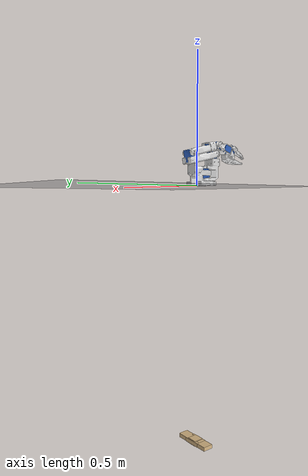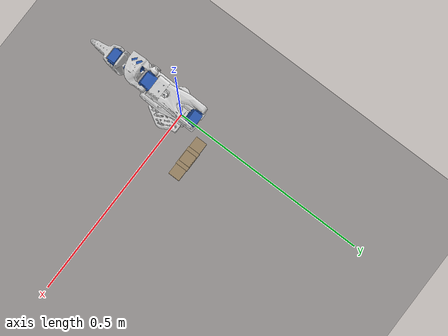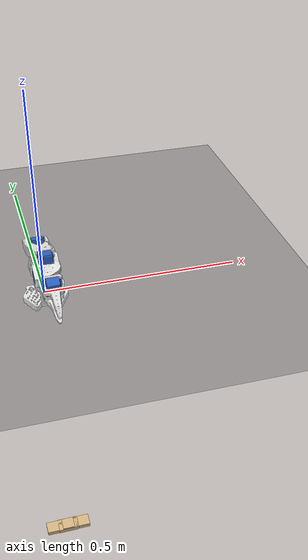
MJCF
<mujoco model="so100_scene">
  <compiler angle="radian" meshdir="assets/"/>

  <visual>
    <global offwidth="1920" offheight="1080"/>
    <headlight ambient="0.6 0.6 0.6" diffuse="0.8 0.8 0.8" specular="0.3 0.3 0.3"/>
    <rgba haze="0.18 0.18 0.2 1"/>
  </visual>

  <asset>
    <texture type="skybox" colorspace="auto" builtin="gradient" rgb1="0.25 0.26 0.28" rgb2="0.12 0.12 0.14" width="512" height="3072"/>
    <texture type="2d" colorspace="auto" name="grid" builtin="checker" rgb1="0.18 0.18 0.2" rgb2="0.22 0.22 0.24" width="512" height="512"/>
    <material name="grid_mat" texture="grid" texrepeat="10 10" reflectance="0.05"/>
    <material name="white_print" specular="0.3" shininess="0.3" rgba="0.88 0.88 0.88 1"/>
    <material name="servo_mat" specular="0.6" rgba="0.18 0.38 0.75 1"/>
    <material name="wood_mat" specular="0.1" shininess="0.1" rgba="0.85 0.72 0.52 1"/>
    <mesh name="base_mesh" file="Base.stl"/>
    <mesh name="base_motor_mesh" file="Base_Motor.stl"/>
    <mesh name="rot_pitch_mesh" file="Rotation_Pitch.stl"/>
    <mesh name="rot_pitch_motor_mesh" file="Rotation_Pitch_Motor.stl"/>
    <mesh name="upper_arm_mesh" file="Upper_Arm.stl"/>
    <mesh name="upper_arm_motor_mesh" file="Upper_Arm_Motor.stl"/>
    <mesh name="lower_arm_mesh" file="Lower_Arm.stl"/>
    <mesh name="lower_arm_motor_mesh" file="Lower_Arm_Motor.stl"/>
    <mesh name="wrist_mesh" file="Wrist_Pitch_Roll.stl"/>
    <mesh name="wrist_motor_mesh" file="Wrist_Pitch_Roll_Motor.stl"/>
    <mesh name="fixed_jaw_mesh" file="Fixed_Jaw.stl"/>
    <mesh name="fixed_jaw_motor_mesh" file="Fixed_Jaw_Motor.stl"/>
    <mesh name="moving_jaw_mesh" file="Moving_Jaw.stl"/>
  </asset>

  <worldbody>
    <geom name="floor" size="1.5 1.5 0.05" type="plane" material="grid_mat"/>
    <light pos="0 -0.6 1.8" dir="0 0.287348 -0.957826" type="directional"/>
    <body name="base">
      <geom type="mesh" material="white_print" mesh="base_mesh"/>
      <geom type="mesh" material="servo_mat" mesh="base_motor_mesh"/>
      <body name="shoulder" pos="0 -0.0452 0.0165" quat="0.707109 0.707105 0 0">
        <joint name="shoulder_pan" range="-2 2" axis="0 1 0"/>
        <geom type="mesh" material="white_print" mesh="rot_pitch_mesh"/>
        <geom type="mesh" material="servo_mat" mesh="rot_pitch_motor_mesh"/>
        <body name="upper_arm" pos="0 0.1025 0.0306" quat="0.62161 -0.783327 0 0">
          <joint name="shoulder_lift" range="0 3.5" axis="1 0 0"/>
          <geom type="mesh" material="white_print" mesh="upper_arm_mesh"/>
          <geom type="mesh" material="servo_mat" mesh="upper_arm_motor_mesh"/>
          <body name="lower_arm" pos="0 0.11257 0.028" quat="0.707109 0.707105 0 0">
            <joint name="elbow_flex" range="-3.14158 0" axis="1 0 0"/>
            <geom type="mesh" material="white_print" mesh="lower_arm_mesh"/>
            <geom type="mesh" material="servo_mat" mesh="lower_arm_motor_mesh"/>
            <body name="wrist" pos="0 0.0052 0.1349" quat="0.877583 -0.479426 0 0">
              <joint name="wrist_flex" range="-2.5 1.2" axis="1 0 0"/>
              <geom type="mesh" material="white_print" mesh="wrist_mesh"/>
              <geom type="mesh" material="servo_mat" mesh="wrist_motor_mesh"/>
              <body name="gripper" pos="0 -0.0601 0" quat="0.707109 0 0.707105 0">
                <joint name="wrist_roll" range="-3.14158 3.14158" axis="0 1 0"/>
                <geom type="mesh" material="white_print" mesh="fixed_jaw_mesh"/>
                <geom type="mesh" material="servo_mat" mesh="fixed_jaw_motor_mesh"/>
                <body name="jaw" pos="-0.0202 -0.0244 0" quat="6.32679e-06 0 1 0">
                  <joint name="gripper_jaw" range="-0.2 2"/>
                  <geom type="mesh" material="white_print" mesh="moving_jaw_mesh"/>
                </body>
              </body>
            </body>
          </body>
        </body>
      </body>
    </body>
    <body name="obj_block_0" pos="0 0 -1">
      <joint type="free"/>
      <geom name="geom_obj_0" size="0.0199 0.0188 0.0075" type="box" mass="0.02" material="wood_mat"/>
    </body>
    <body name="obj_block_1" pos="0 0 -1">
      <joint type="free"/>
      <geom name="geom_obj_1" size="0.07345 0.0205 0.0075" type="box" mass="0.02" material="wood_mat"/>
    </body>
    <body name="obj_block_2" pos="0 0 -1">
      <joint type="free"/>
      <geom name="geom_obj_2" size="0.0338 0.02195 0.0075" type="box" mass="0.02" material="wood_mat"/>
    </body>
    <body name="obj_block_3" pos="0 0 -1">
      <joint type="free"/>
      <geom name="geom_obj_3" size="0.02 0.02 0.01" type="box" mass="0.02" material="wood_mat"/>
    </body>
    <body name="obj_block_4" pos="0 0 -1">
      <joint type="free"/>
      <geom name="geom_obj_4" size="0.02 0.02 0.01" type="box" mass="0.02" material="wood_mat"/>
    </body>
    <body name="obj_block_5" pos="0 0 -1">
      <joint type="free"/>
      <geom name="geom_obj_5" size="0.02 0.02 0.01" type="box" mass="0.02" material="wood_mat"/>
    </body>
    <body name="obj_block_6" pos="0 0 -1">
      <joint type="free"/>
      <geom name="geom_obj_6" size="0.02 0.02 0.01" type="box" mass="0.02" material="wood_mat"/>
    </body>
    <body name="obj_block_7" pos="0 0 -1">
      <joint type="free"/>
      <geom name="geom_obj_7" size="0.02 0.02 0.01" type="box" mass="0.02" material="wood_mat"/>
    </body>
    <body name="obj_block_8" pos="0 0 -1">
      <joint type="free"/>
      <geom name="geom_obj_8" size="0.02 0.02 0.01" type="box" mass="0.02" material="wood_mat"/>
    </body>
    <body name="obj_block_9" pos="0 0 -1">
      <joint type="free"/>
      <geom name="geom_obj_9" size="0.02 0.02 0.01" type="box" mass="0.02" material="wood_mat"/>
    </body>
    <body name="obj_block_10" pos="0 0 -1">
      <joint type="free"/>
      <geom name="geom_obj_10" size="0.02 0.02 0.01" type="box" mass="0.02" material="wood_mat"/>
    </body>
    <body name="obj_block_11" pos="0 0 -1">
      <joint type="free"/>
      <geom name="geom_obj_11" size="0.02 0.02 0.01" type="box" mass="0.02" material="wood_mat"/>
    </body>
    <body name="obj_block_12" pos="0 0 -1">
      <joint type="free"/>
      <geom name="geom_obj_12" size="0.02 0.02 0.01" type="box" mass="0.02" material="wood_mat"/>
    </body>
    <body name="obj_block_13" pos="0 0 -1">
      <joint type="free"/>
      <geom name="geom_obj_13" size="0.02 0.02 0.01" type="box" mass="0.02" material="wood_mat"/>
    </body>
    <body name="obj_block_14" pos="0 0 -1">
      <joint type="free"/>
      <geom name="geom_obj_14" size="0.02 0.02 0.01" type="box" mass="0.02" material="wood_mat"/>
    </body>
    <body name="obj_block_15" pos="0 0 -1">
      <joint type="free"/>
      <geom name="geom_obj_15" size="0.02 0.02 0.01" type="box" mass="0.02" material="wood_mat"/>
    </body>
  </worldbody>
</mujoco>
